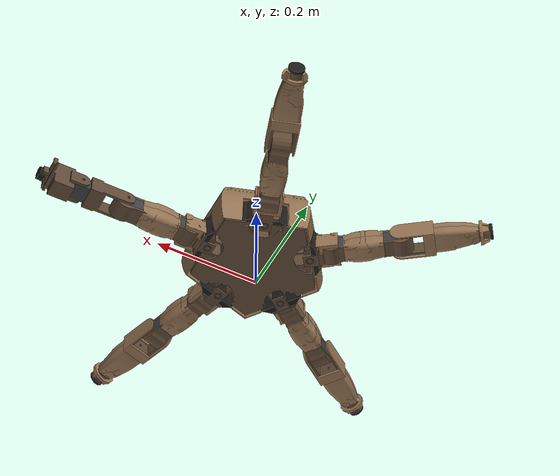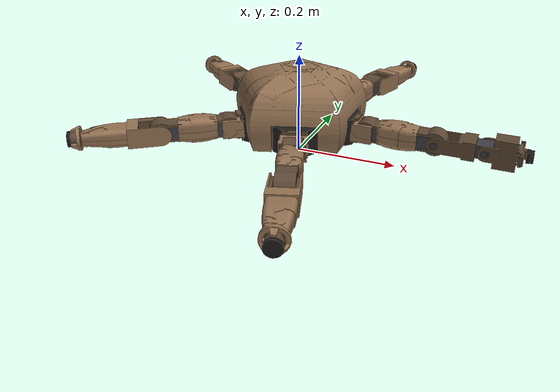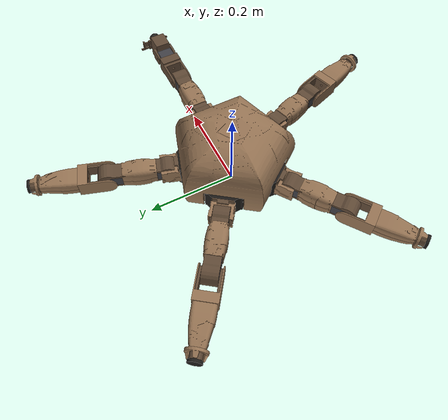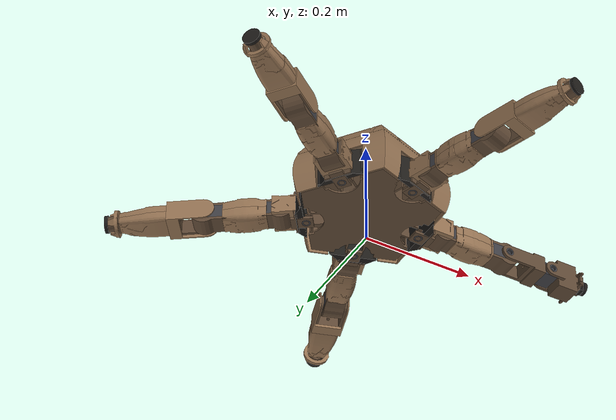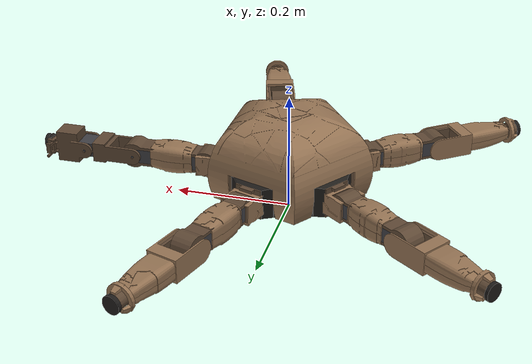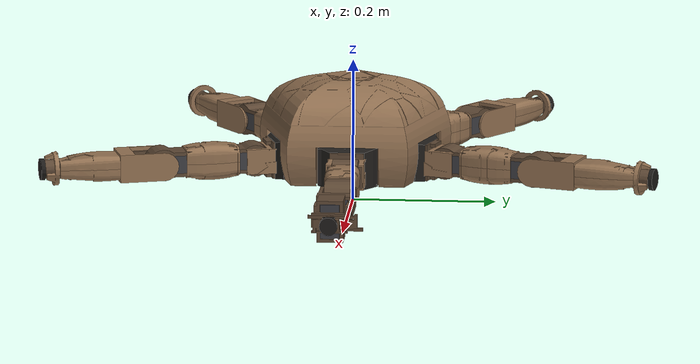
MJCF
<mujoco model="rocky">
  <compiler angle="radian" meshdir="meshes" autolimits="true"/>

  <default>
    <default class="rocky">
      <joint damping="0.01" armature="0.00595125" frictionloss="0.05"/>
      <geom solref="0.01 1"/>
      <default class="visual">
        <geom type="mesh" contype="0" conaffinity="0" group="2" density="0"/>
      </default>
      <default class="collision">
        <geom group="3" contype="1" conaffinity="1" density="0" friction="1 0.005 0.0005"/>
      </default>
    </default>
  </default>

  <asset>
    <material name="sandstone" rgba="0.588 0.455 0.329 1" specular="0.15" shininess="0.15"/>
    <material name="sandstone_dark" rgba="0.376 0.290 0.212 1" specular="0.15" shininess="0.15"/>
    <material name="metal" rgba="0.25 0.25 0.27 1" specular="0.6" shininess="0.5"/>
    <material name="rubber" rgba="0.12 0.11 0.10 1" specular="0.05" shininess="0.05"/>
    <mesh name="base__Chassis" file="base__Chassis.stl"/>
    <mesh name="base__Carapace" file="base__Carapace.stl"/>
    <mesh name="base__Shoulder_Boot" file="base__Shoulder_Boot.stl"/>
    <mesh name="base__Shoulder_Boot_1" file="base__Shoulder_Boot_1.stl"/>
    <mesh name="base__Shoulder_Boot_2" file="base__Shoulder_Boot_2.stl"/>
    <mesh name="base__Shoulder_Boot_3" file="base__Shoulder_Boot_3.stl"/>
    <mesh name="base__Shoulder_Boot_4" file="base__Shoulder_Boot_4.stl"/>
    <mesh name="coxa_l1__Coxa_Bracket" file="coxa_l1__Coxa_Bracket.stl"/>
    <mesh name="coxa_l1__F6700ZZ_SweepIdler" file="coxa_l1__F6700ZZ_SweepIdler.stl"/>
    <mesh name="coxa_l1__F6700ZZ_LiftIdler" file="coxa_l1__F6700ZZ_LiftIdler.stl"/>
    <mesh name="coxa_l1__Shoulder_Cap" file="coxa_l1__Shoulder_Cap.stl"/>
    <mesh name="femur_l1__Femur_Shell" file="femur_l1__Femur_Shell.stl"/>
    <mesh name="femur_l1__STS3215_Lift" file="femur_l1__STS3215_Lift.stl"/>
    <mesh name="femur_l1__STS3215_Elbow" file="femur_l1__STS3215_Elbow.stl"/>
    <mesh name="femur_l1__Horn_Lift" file="femur_l1__Horn_Lift.stl"/>
    <mesh name="femur_l1__Horn_Elbow" file="femur_l1__Horn_Elbow.stl"/>
    <mesh name="femur_l1__Femur_Sleeve_Bottom" file="femur_l1__Femur_Sleeve_Bottom.stl"/>
    <mesh name="femur_l1__Femur_Sleeve_Top" file="femur_l1__Femur_Sleeve_Top.stl"/>
    <mesh name="tibia_l1__Tibia" file="tibia_l1__Tibia.stl"/>
    <mesh name="tibia_l1__F6700ZZ_ElbowIdler" file="tibia_l1__F6700ZZ_ElbowIdler.stl"/>
    <mesh name="tibia_l1__TactileSwitch_6x6" file="tibia_l1__TactileSwitch_6x6.stl"/>
    <mesh name="tibia_l1__Tibia_Sleeve_Bottom" file="tibia_l1__Tibia_Sleeve_Bottom.stl"/>
    <mesh name="tibia_l1__Tibia_Sleeve_Top" file="tibia_l1__Tibia_Sleeve_Top.stl"/>
    <mesh name="tibia_l1__Knee_Cap" file="tibia_l1__Knee_Cap.stl"/>
    <mesh name="tibia_l1__Claw_Foot" file="tibia_l1__Claw_Foot.stl"/>
    <mesh name="tibia_l1__Plunger_Pin" file="tibia_l1__Plunger_Pin.stl"/>
    <mesh name="tibia_m0__Tibia_Manip" file="tibia_m0__Tibia_Manip.stl"/>
    <mesh name="tibia_m0__F6700ZZ_ElbowIdler" file="tibia_m0__F6700ZZ_ElbowIdler.stl"/>
    <mesh name="tibia_m0__STS3215_Wrist" file="tibia_m0__STS3215_Wrist.stl"/>
    <mesh name="tibia_m0__Horn_Wrist" file="tibia_m0__Horn_Wrist.stl"/>
    <mesh name="gripper_m0__Gripper_Base" file="gripper_m0__Gripper_Base.stl"/>
    <mesh name="gripper_m0__Jaw_R" file="gripper_m0__Jaw_R.stl"/>
    <mesh name="gripper_m0__Jaw_L" file="gripper_m0__Jaw_L.stl"/>
    <mesh name="gripper_m0__Foot_Pad_Manip" file="gripper_m0__Foot_Pad_Manip.stl"/>
    <mesh name="gripper_m0__F6700ZZ_WristIdler" file="gripper_m0__F6700ZZ_WristIdler.stl"/>
    <mesh name="gripper_m0__STS3215_Gripper" file="gripper_m0__STS3215_Gripper.stl"/>
    <mesh name="gripper_m0__Horn_Gripper" file="gripper_m0__Horn_Gripper.stl"/>
    <mesh name="gripper_m0__Pinion_12T" file="gripper_m0__Pinion_12T.stl"/>
    <mesh name="hull_base" file="hull_base.stl"/>
    <mesh name="hull_coxa" file="hull_coxa.stl"/>
    <mesh name="hull_femur" file="hull_femur.stl"/>
    <mesh name="hull_tibia" file="hull_tibia.stl"/>
    <mesh name="hull_tibia_m" file="hull_tibia_m.stl"/>
    <mesh name="hull_gripper" file="hull_gripper.stl"/>
  </asset>

  <worldbody>
    <body name="base" pos="0 0 0.0450300000" childclass="rocky">
      <freejoint name="floating_base_joint"/>
      <inertial pos="0.0001749761 -0.0000434770 0.0527797235" mass="1.3323345375" fullinertia="0.00563132765455 0.00617944523274 0.00885178962494 1.18792858478e-05 6.73435054842e-06 -3.19068712785e-06"/>
      <site name="imu" pos="0 0 0.0125" size="0.005" group="4"/>
      <geom class="visual" mesh="base__Chassis" material="sandstone_dark"/>
      <geom class="visual" mesh="base__Carapace" material="sandstone"/>
      <geom class="visual" mesh="base__Shoulder_Boot" material="rubber"/>
      <geom class="visual" mesh="base__Shoulder_Boot_1" material="rubber"/>
      <geom class="visual" mesh="base__Shoulder_Boot_2" material="rubber"/>
      <geom class="visual" mesh="base__Shoulder_Boot_3" material="rubber"/>
      <geom class="visual" mesh="base__Shoulder_Boot_4" material="rubber"/>
      <geom name="base_collision" class="collision" type="mesh" mesh="hull_base"/>

      <body name="coxa_0" pos="0.1011271243 0.0000000000 0.0220000000" euler="0 0 0.0000000000">
        <joint name="sweep_0" axis="0 0 1" range="-0.7853981634 0.7853981634" actuatorfrcrange="-2.90 2.90"/>
        <inertial pos="0.0220536062 -0.0019426100 -0.0017121492" mass="0.0513195740" fullinertia="2.66251964914e-05 2.59360418573e-05 2.73187075064e-05 2.03394448522e-06 -1.75072383268e-06 2.06874025331e-08"/>
        <geom class="visual" mesh="coxa_l1__Coxa_Bracket" material="sandstone_dark"/>
        <geom class="visual" mesh="coxa_l1__F6700ZZ_SweepIdler" material="metal"/>
        <geom class="visual" mesh="coxa_l1__F6700ZZ_LiftIdler" material="metal"/>
        <geom class="visual" mesh="coxa_l1__Shoulder_Cap" material="sandstone"/>
        <geom name="coxa_0_collision" class="collision" type="mesh" mesh="hull_coxa"/>
        <body name="femur_0" pos="0.0420000000 0 0">
          <joint name="lift_0" axis="0 1 0" range="-1.3962634016 1.4835298642" actuatorfrcrange="-2.90 2.90"/>
          <inertial pos="0.0641940239 0.0000510935 0.0001382543" mass="0.3104070510" fullinertia="8.81913648521e-05 0.000816480742233 0.000812937154262 6.02727799994e-07 4.02792124591e-07 5.14032825426e-09"/>
          <geom class="visual" mesh="femur_l1__Femur_Shell" material="sandstone_dark"/>
          <geom class="visual" mesh="femur_l1__STS3215_Lift" material="metal"/>
          <geom class="visual" mesh="femur_l1__STS3215_Elbow" material="metal"/>
          <geom class="visual" mesh="femur_l1__Horn_Lift" material="metal"/>
          <geom class="visual" mesh="femur_l1__Horn_Elbow" material="metal"/>
          <geom class="visual" mesh="femur_l1__Femur_Sleeve_Bottom" material="sandstone"/>
          <geom class="visual" mesh="femur_l1__Femur_Sleeve_Top" material="sandstone"/>
          <geom name="femur_0_collision" class="collision" type="mesh" mesh="hull_femur"/>
          <body name="tibia_0" pos="0.1300000000 0 0">
            <joint name="elbow_0" axis="0 1 0" range="0.1745329252 2.3561944902" actuatorfrcrange="-2.90 2.90"/>
            <inertial pos="0.0606282784 -0.0006202666 -0.0000000000" mass="0.1149173802" fullinertia="3.21672869662e-05 9.46675013848e-05 0.000110302610086 -6.12120479707e-06 -1.4935611875e-19 -3.66694995021e-20"/>
            <geom class="visual" mesh="tibia_m0__Tibia_Manip" material="sandstone_dark"/>
            <geom class="visual" mesh="tibia_m0__F6700ZZ_ElbowIdler" material="metal"/>
            <geom class="visual" mesh="tibia_m0__STS3215_Wrist" material="metal"/>
            <geom class="visual" mesh="tibia_m0__Horn_Wrist" material="metal"/>
            <geom name="tibia_0_collision" class="collision" type="mesh" mesh="hull_tibia_m"/>
            <body name="gripper_0" pos="0.0900000000 0 0">
              <joint name="wrist_0" axis="0 1 0" range="-1.3089969390 1.3089969390" actuatorfrcrange="-2.90 2.90"/>
              <inertial pos="0.0351404471 -0.0001979038 0.0000000000" mass="0.1331457011" fullinertia="4.66083182644e-05 6.91403871936e-05 6.28312573096e-05 -5.00611665605e-06 -2.23750063156e-15 -8.47360828886e-09"/>
              <geom class="visual" mesh="gripper_m0__Gripper_Base" material="sandstone_dark"/>
              <geom class="visual" mesh="gripper_m0__Jaw_R" material="sandstone_dark"/>
              <geom class="visual" mesh="gripper_m0__Jaw_L" material="sandstone_dark"/>
              <geom class="visual" mesh="gripper_m0__Foot_Pad_Manip" material="rubber"/>
              <geom class="visual" mesh="gripper_m0__F6700ZZ_WristIdler" material="metal"/>
              <geom class="visual" mesh="gripper_m0__STS3215_Gripper" material="metal"/>
              <geom class="visual" mesh="gripper_m0__Horn_Gripper" material="metal"/>
              <geom class="visual" mesh="gripper_m0__Pinion_12T" material="metal"/>
              <geom name="gripper_0_collision" class="collision" type="mesh" mesh="hull_gripper"/>
              <site name="foot_0" pos="0.0743601445 0 0" size="0.0100000000" group="4"/>
              <geom name="foot_0_collision" class="collision" type="sphere" size="0.0100000000" pos="0.0743601445 0 0" condim="6" priority="1"/>
            </body>
          </body>
        </body>
      </body>

      <body name="coxa_1" pos="0.0312500000 0.0961776105 0.0220000000" euler="0 0 1.2566370614">
        <joint name="sweep_1" axis="0 0 1" range="-0.7853981634 0.7853981634" actuatorfrcrange="-2.90 2.90"/>
        <inertial pos="0.0220536062 -0.0019426100 -0.0017121492" mass="0.0513195740" fullinertia="2.66251964914e-05 2.59360418573e-05 2.73187075064e-05 2.03394448522e-06 -1.75072383268e-06 2.06874025331e-08"/>
        <geom class="visual" mesh="coxa_l1__Coxa_Bracket" material="sandstone_dark"/>
        <geom class="visual" mesh="coxa_l1__F6700ZZ_SweepIdler" material="metal"/>
        <geom class="visual" mesh="coxa_l1__F6700ZZ_LiftIdler" material="metal"/>
        <geom class="visual" mesh="coxa_l1__Shoulder_Cap" material="sandstone"/>
        <geom name="coxa_1_collision" class="collision" type="mesh" mesh="hull_coxa"/>
        <body name="femur_1" pos="0.0420000000 0 0">
          <joint name="lift_1" axis="0 1 0" range="-1.3962634016 1.4835298642" actuatorfrcrange="-2.90 2.90"/>
          <inertial pos="0.0641940239 0.0000510935 0.0001382543" mass="0.3104070510" fullinertia="8.81913648521e-05 0.000816480742233 0.000812937154262 6.02727799994e-07 4.02792124591e-07 5.14032825426e-09"/>
          <geom class="visual" mesh="femur_l1__Femur_Shell" material="sandstone_dark"/>
          <geom class="visual" mesh="femur_l1__STS3215_Lift" material="metal"/>
          <geom class="visual" mesh="femur_l1__STS3215_Elbow" material="metal"/>
          <geom class="visual" mesh="femur_l1__Horn_Lift" material="metal"/>
          <geom class="visual" mesh="femur_l1__Horn_Elbow" material="metal"/>
          <geom class="visual" mesh="femur_l1__Femur_Sleeve_Bottom" material="sandstone"/>
          <geom class="visual" mesh="femur_l1__Femur_Sleeve_Top" material="sandstone"/>
          <geom name="femur_1_collision" class="collision" type="mesh" mesh="hull_femur"/>
          <body name="tibia_1" pos="0.1300000000 0 0">
            <joint name="elbow_1" axis="0 1 0" range="0.1745329252 2.2689280276" actuatorfrcrange="-2.90 2.90"/>
            <inertial pos="0.0794509441 -0.0005404937 -0.0000268868" mass="0.1952924260" fullinertia="7.16375396603e-05 0.000446757714147 0.00047516971597 -6.30207363729e-06 -3.81130343208e-09 -3.34732118895e-08"/>
            <geom class="visual" mesh="tibia_l1__Tibia" material="sandstone_dark"/>
            <geom class="visual" mesh="tibia_l1__F6700ZZ_ElbowIdler" material="metal"/>
            <geom class="visual" mesh="tibia_l1__TactileSwitch_6x6" material="metal"/>
            <geom class="visual" mesh="tibia_l1__Tibia_Sleeve_Bottom" material="sandstone"/>
            <geom class="visual" mesh="tibia_l1__Tibia_Sleeve_Top" material="sandstone"/>
            <geom class="visual" mesh="tibia_l1__Knee_Cap" material="sandstone"/>
            <geom class="visual" mesh="tibia_l1__Claw_Foot" material="sandstone"/>
            <geom class="visual" mesh="tibia_l1__Plunger_Pin" material="rubber"/>
            <geom name="tibia_1_collision" class="collision" type="mesh" mesh="hull_tibia"/>
            <site name="foot_1" pos="0.1622572343 0 0" size="0.0120000000" group="4"/>
            <geom name="foot_1_collision" class="collision" type="sphere" size="0.0120000000" pos="0.1622572343 0 0" condim="6" priority="1"/>
          </body>
        </body>
      </body>

      <body name="coxa_2" pos="-0.0818135621 0.0594410323 0.0220000000" euler="0 0 2.5132741229">
        <joint name="sweep_2" axis="0 0 1" range="-0.7853981634 0.7853981634" actuatorfrcrange="-2.90 2.90"/>
        <inertial pos="0.0220536062 -0.0019426100 -0.0017121492" mass="0.0513195740" fullinertia="2.66251964914e-05 2.59360418573e-05 2.73187075064e-05 2.03394448522e-06 -1.75072383268e-06 2.06874025331e-08"/>
        <geom class="visual" mesh="coxa_l1__Coxa_Bracket" material="sandstone_dark"/>
        <geom class="visual" mesh="coxa_l1__F6700ZZ_SweepIdler" material="metal"/>
        <geom class="visual" mesh="coxa_l1__F6700ZZ_LiftIdler" material="metal"/>
        <geom class="visual" mesh="coxa_l1__Shoulder_Cap" material="sandstone"/>
        <geom name="coxa_2_collision" class="collision" type="mesh" mesh="hull_coxa"/>
        <body name="femur_2" pos="0.0420000000 0 0">
          <joint name="lift_2" axis="0 1 0" range="-1.3962634016 1.4835298642" actuatorfrcrange="-2.90 2.90"/>
          <inertial pos="0.0641940239 0.0000510935 0.0001382543" mass="0.3104070510" fullinertia="8.81913648521e-05 0.000816480742233 0.000812937154262 6.02727799994e-07 4.02792124591e-07 5.14032825426e-09"/>
          <geom class="visual" mesh="femur_l1__Femur_Shell" material="sandstone_dark"/>
          <geom class="visual" mesh="femur_l1__STS3215_Lift" material="metal"/>
          <geom class="visual" mesh="femur_l1__STS3215_Elbow" material="metal"/>
          <geom class="visual" mesh="femur_l1__Horn_Lift" material="metal"/>
          <geom class="visual" mesh="femur_l1__Horn_Elbow" material="metal"/>
          <geom class="visual" mesh="femur_l1__Femur_Sleeve_Bottom" material="sandstone"/>
          <geom class="visual" mesh="femur_l1__Femur_Sleeve_Top" material="sandstone"/>
          <geom name="femur_2_collision" class="collision" type="mesh" mesh="hull_femur"/>
          <body name="tibia_2" pos="0.1300000000 0 0">
            <joint name="elbow_2" axis="0 1 0" range="0.1745329252 2.2689280276" actuatorfrcrange="-2.90 2.90"/>
            <inertial pos="0.0794509441 -0.0005404937 -0.0000268868" mass="0.1952924260" fullinertia="7.16375396603e-05 0.000446757714147 0.00047516971597 -6.30207363729e-06 -3.81130343208e-09 -3.34732118895e-08"/>
            <geom class="visual" mesh="tibia_l1__Tibia" material="sandstone_dark"/>
            <geom class="visual" mesh="tibia_l1__F6700ZZ_ElbowIdler" material="metal"/>
            <geom class="visual" mesh="tibia_l1__TactileSwitch_6x6" material="metal"/>
            <geom class="visual" mesh="tibia_l1__Tibia_Sleeve_Bottom" material="sandstone"/>
            <geom class="visual" mesh="tibia_l1__Tibia_Sleeve_Top" material="sandstone"/>
            <geom class="visual" mesh="tibia_l1__Knee_Cap" material="sandstone"/>
            <geom class="visual" mesh="tibia_l1__Claw_Foot" material="sandstone"/>
            <geom class="visual" mesh="tibia_l1__Plunger_Pin" material="rubber"/>
            <geom name="tibia_2_collision" class="collision" type="mesh" mesh="hull_tibia"/>
            <site name="foot_2" pos="0.1622572343 0 0" size="0.0120000000" group="4"/>
            <geom name="foot_2_collision" class="collision" type="sphere" size="0.0120000000" pos="0.1622572343 0 0" condim="6" priority="1"/>
          </body>
        </body>
      </body>

      <body name="coxa_3" pos="-0.0818135621 -0.0594410323 0.0220000000" euler="0 0 -2.5132741229">
        <joint name="sweep_3" axis="0 0 1" range="-0.7853981634 0.7853981634" actuatorfrcrange="-2.90 2.90"/>
        <inertial pos="0.0220536062 -0.0019426100 -0.0017121492" mass="0.0513195740" fullinertia="2.66251964914e-05 2.59360418573e-05 2.73187075064e-05 2.03394448522e-06 -1.75072383268e-06 2.06874025331e-08"/>
        <geom class="visual" mesh="coxa_l1__Coxa_Bracket" material="sandstone_dark"/>
        <geom class="visual" mesh="coxa_l1__F6700ZZ_SweepIdler" material="metal"/>
        <geom class="visual" mesh="coxa_l1__F6700ZZ_LiftIdler" material="metal"/>
        <geom class="visual" mesh="coxa_l1__Shoulder_Cap" material="sandstone"/>
        <geom name="coxa_3_collision" class="collision" type="mesh" mesh="hull_coxa"/>
        <body name="femur_3" pos="0.0420000000 0 0">
          <joint name="lift_3" axis="0 1 0" range="-1.3962634016 1.4835298642" actuatorfrcrange="-2.90 2.90"/>
          <inertial pos="0.0641940239 0.0000510935 0.0001382543" mass="0.3104070510" fullinertia="8.81913648521e-05 0.000816480742233 0.000812937154262 6.02727799994e-07 4.02792124591e-07 5.14032825426e-09"/>
          <geom class="visual" mesh="femur_l1__Femur_Shell" material="sandstone_dark"/>
          <geom class="visual" mesh="femur_l1__STS3215_Lift" material="metal"/>
          <geom class="visual" mesh="femur_l1__STS3215_Elbow" material="metal"/>
          <geom class="visual" mesh="femur_l1__Horn_Lift" material="metal"/>
          <geom class="visual" mesh="femur_l1__Horn_Elbow" material="metal"/>
          <geom class="visual" mesh="femur_l1__Femur_Sleeve_Bottom" material="sandstone"/>
          <geom class="visual" mesh="femur_l1__Femur_Sleeve_Top" material="sandstone"/>
          <geom name="femur_3_collision" class="collision" type="mesh" mesh="hull_femur"/>
          <body name="tibia_3" pos="0.1300000000 0 0">
            <joint name="elbow_3" axis="0 1 0" range="0.1745329252 2.2689280276" actuatorfrcrange="-2.90 2.90"/>
            <inertial pos="0.0794509441 -0.0005404937 -0.0000268868" mass="0.1952924260" fullinertia="7.16375396603e-05 0.000446757714147 0.00047516971597 -6.30207363729e-06 -3.81130343208e-09 -3.34732118895e-08"/>
            <geom class="visual" mesh="tibia_l1__Tibia" material="sandstone_dark"/>
            <geom class="visual" mesh="tibia_l1__F6700ZZ_ElbowIdler" material="metal"/>
            <geom class="visual" mesh="tibia_l1__TactileSwitch_6x6" material="metal"/>
            <geom class="visual" mesh="tibia_l1__Tibia_Sleeve_Bottom" material="sandstone"/>
            <geom class="visual" mesh="tibia_l1__Tibia_Sleeve_Top" material="sandstone"/>
            <geom class="visual" mesh="tibia_l1__Knee_Cap" material="sandstone"/>
            <geom class="visual" mesh="tibia_l1__Claw_Foot" material="sandstone"/>
            <geom class="visual" mesh="tibia_l1__Plunger_Pin" material="rubber"/>
            <geom name="tibia_3_collision" class="collision" type="mesh" mesh="hull_tibia"/>
            <site name="foot_3" pos="0.1622572343 0 0" size="0.0120000000" group="4"/>
            <geom name="foot_3_collision" class="collision" type="sphere" size="0.0120000000" pos="0.1622572343 0 0" condim="6" priority="1"/>
          </body>
        </body>
      </body>

      <body name="coxa_4" pos="0.0312500000 -0.0961776105 0.0220000000" euler="0 0 -1.2566370614">
        <joint name="sweep_4" axis="0 0 1" range="-0.7853981634 0.7853981634" actuatorfrcrange="-2.90 2.90"/>
        <inertial pos="0.0220536062 -0.0019426100 -0.0017121492" mass="0.0513195740" fullinertia="2.66251964914e-05 2.59360418573e-05 2.73187075064e-05 2.03394448522e-06 -1.75072383268e-06 2.06874025331e-08"/>
        <geom class="visual" mesh="coxa_l1__Coxa_Bracket" material="sandstone_dark"/>
        <geom class="visual" mesh="coxa_l1__F6700ZZ_SweepIdler" material="metal"/>
        <geom class="visual" mesh="coxa_l1__F6700ZZ_LiftIdler" material="metal"/>
        <geom class="visual" mesh="coxa_l1__Shoulder_Cap" material="sandstone"/>
        <geom name="coxa_4_collision" class="collision" type="mesh" mesh="hull_coxa"/>
        <body name="femur_4" pos="0.0420000000 0 0">
          <joint name="lift_4" axis="0 1 0" range="-1.3962634016 1.4835298642" actuatorfrcrange="-2.90 2.90"/>
          <inertial pos="0.0641940239 0.0000510935 0.0001382543" mass="0.3104070510" fullinertia="8.81913648521e-05 0.000816480742233 0.000812937154262 6.02727799994e-07 4.02792124591e-07 5.14032825426e-09"/>
          <geom class="visual" mesh="femur_l1__Femur_Shell" material="sandstone_dark"/>
          <geom class="visual" mesh="femur_l1__STS3215_Lift" material="metal"/>
          <geom class="visual" mesh="femur_l1__STS3215_Elbow" material="metal"/>
          <geom class="visual" mesh="femur_l1__Horn_Lift" material="metal"/>
          <geom class="visual" mesh="femur_l1__Horn_Elbow" material="metal"/>
          <geom class="visual" mesh="femur_l1__Femur_Sleeve_Bottom" material="sandstone"/>
          <geom class="visual" mesh="femur_l1__Femur_Sleeve_Top" material="sandstone"/>
          <geom name="femur_4_collision" class="collision" type="mesh" mesh="hull_femur"/>
          <body name="tibia_4" pos="0.1300000000 0 0">
            <joint name="elbow_4" axis="0 1 0" range="0.1745329252 2.2689280276" actuatorfrcrange="-2.90 2.90"/>
            <inertial pos="0.0794509441 -0.0005404937 -0.0000268868" mass="0.1952924260" fullinertia="7.16375396603e-05 0.000446757714147 0.00047516971597 -6.30207363729e-06 -3.81130343208e-09 -3.34732118895e-08"/>
            <geom class="visual" mesh="tibia_l1__Tibia" material="sandstone_dark"/>
            <geom class="visual" mesh="tibia_l1__F6700ZZ_ElbowIdler" material="metal"/>
            <geom class="visual" mesh="tibia_l1__TactileSwitch_6x6" material="metal"/>
            <geom class="visual" mesh="tibia_l1__Tibia_Sleeve_Bottom" material="sandstone"/>
            <geom class="visual" mesh="tibia_l1__Tibia_Sleeve_Top" material="sandstone"/>
            <geom class="visual" mesh="tibia_l1__Knee_Cap" material="sandstone"/>
            <geom class="visual" mesh="tibia_l1__Claw_Foot" material="sandstone"/>
            <geom class="visual" mesh="tibia_l1__Plunger_Pin" material="rubber"/>
            <geom name="tibia_4_collision" class="collision" type="mesh" mesh="hull_tibia"/>
            <site name="foot_4" pos="0.1622572343 0 0" size="0.0120000000" group="4"/>
            <geom name="foot_4_collision" class="collision" type="sphere" size="0.0120000000" pos="0.1622572343 0 0" condim="6" priority="1"/>
          </body>
        </body>
      </body>
    </body>
  </worldbody>

  <sensor>
    <gyro name="imu_ang_vel" site="imu"/>
    <velocimeter name="imu_lin_vel" site="imu"/>
    <accelerometer name="imu_lin_acc" site="imu"/>
    <framezaxis name="imu_upvector" objtype="body" objname="world" reftype="site" refname="imu"/>
    <subtreeangmom name="root_angmom" body="base"/>
  </sensor>

  <keyframe>
    <key name="home" qpos="0 0 0.0450300000 1 0 0 0 0.0000000000 -0.8726646260 2.1293016874 0.0000000000 0.0000000000 -0.8726646260 2.1293016874 0.0000000000 -0.8726646260 2.1293016874 0.0000000000 -0.8726646260 2.1293016874 0.0000000000 -0.8726646260 2.1293016874"/>
  </keyframe>
</mujoco>
